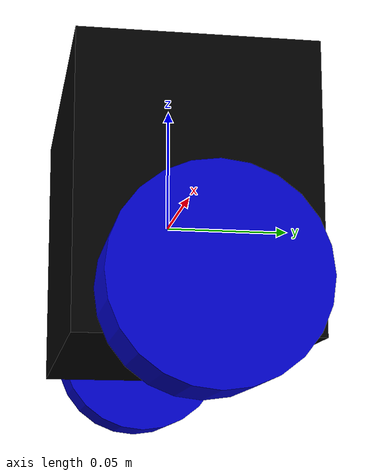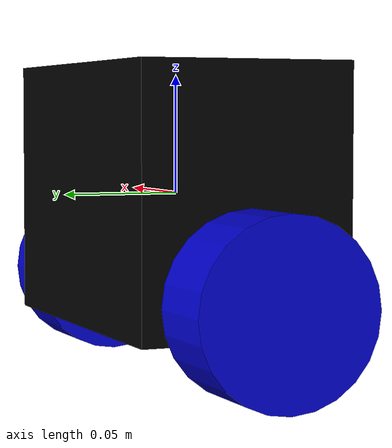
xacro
<?xml version="1.0"?>
<robot name="Alfred" xmlns:xacro="http://www.ros.org/wiki/xacro">

  <material name="blue">
    <color rgba="0 0 0.8 1"/>
  </material>

  <material name="black">
    <color rgba="0 0 0 1"/>
  </material>

<!-- Physical definitions -->
  <xacro:property name="bodyLength" value="0.15" />
  <xacro:property name="bodyHeight" value="0.11" />
  <xacro:property name="bodyDepth" value="0.09" />
  <xacro:property name="bodyMass" value="0.69" />
  <xacro:property name="wheelRadius" value="0.0375" />
  <xacro:property name="wheelWidth" value="0.035" />
  <xacro:property name="wheelMass" value="0.065" />
  <xacro:property name="rightWheelXPos" value="-0.09375" />
  <xacro:property name="leftWheelXPos" value="0.09375" />
  <xacro:property name="wheelZPos" value="-0.04" />

<!-- Macros definition -->
  <!-- Body -->
  <xacro:macro name="body_shape">
    <geometry>
      <box size="${bodyLength} ${bodyDepth} ${bodyHeight}" />
    </geometry>
  </xacro:macro>

  <!-- Wheel -->
  <xacro:macro name="wheel_shape">
    <geometry>
      <cylinder length="${wheelWidth}" radius="${wheelRadius}"/>
    </geometry>
    <origin rpy="0 ${pi/2} 0" xyz="0 0 0"/>
  </xacro:macro>

  <!-- Cylinder inertia matrix -->
  <xacro:macro name="cylinder_inertia" params="radius height mass">
    <mass value="${mass}"/>
    <inertia ixx="${1/12*mass*(3*radius*radius+height*height)}" ixy="0.0" ixz="0.0" iyy="${1/12*mass*(3*radius*radius+height*height)}" iyz="0.0" izz="${1/2*mass*radius*radius}"/>
  </xacro:macro>

  <!-- Box inertia matrix -->
  <xacro:macro name="box_inertia" params="width height depth mass">
    <mass value="${mass}"/>
    <inertia ixx="${1/12*mass*(height*height+depth*depth)}" ixy="0.0" ixz="0.0" iyy="${1/12*mass*(width*width+depth*depth)}" iyz="0.0" izz="${1/12*mass*(width*width+height*height)}"/>
  </xacro:macro>

  <!-- Wheel link-->
  <xacro:macro name="wheel_link" params="side">
    <link name="${side}_wheel">
      <visual>
        <xacro:wheel_shape />
        <material name="blue"/>
      </visual>
      <collision>
        <xacro:wheel_shape />
      </collision>
      <inertial>
        <xacro:cylinder_inertia radius="${wheelRadius}" height="${wheelWidth}" mass="${wheelMass}" />
      </inertial>
    </link>

    <gazebo reference="${side}_wheel">
      <mu1 value="200.0"/>
      <mu2 value="100.0"/>
      <kp value="10000000.0" />
      <kd value="1.0" />
      <material>Gazebo/Grey</material>
    </gazebo>
  </xacro:macro>

  <!-- Wheel transmission-->
  <xacro:macro name="wheel_transmission" params="side">
    <transmission name="${side}_wheel_rotation">
      <type>transmission_interface/SimpleTransmission</type>
      <actuator name="${side}_wheel_motor">
        <mechanicalReduction>1</mechanicalReduction>
      </actuator>
      <joint name="base_to_${side}_wheel">
        <hardwareInterface>hardware_interface/VelocityJointInterface</hardwareInterface>
      </joint>
    </transmission>
  </xacro:macro>

  <!-- Wheel joint-->
  <xacro:macro name="wheel_joint" params="side">
    <joint name="base_to_${side}_wheel" type="continuous">
      <parent link="base_link"/>
      <child link="${side}_wheel"/>
      <xacro:if value="${side == 'right'}" >
        <origin xyz="${rightWheelXPos} 0 ${wheelZPos}"/>
      </xacro:if>
      <xacro:if value="${side == 'left'}" >
        <origin xyz="${leftWheelXPos} 0 ${wheelZPos}"/>
      </xacro:if>
      <axis xyz="1 0 0"/>
    </joint>
  </xacro:macro>

<!-- Links definition -->
  <link name="dummy">
  </link>

  <link name="base_link">
    <visual>
      <xacro:body_shape />
      <material name="black"/>
    </visual>
    <collision>
      <xacro:body_shape />
    </collision>
    <inertial>
      <xacro:box_inertia width="${bodyLength}" height="${bodyHeight}" depth ="${bodyDepth}" mass="${bodyMass}" />
    </inertial>
  </link>

  <xacro:wheel_link side="right" />
  <xacro:wheel_link side="left" />

<!-- Joints definition -->
  <joint name="dummy_joint" type="fixed">
    <parent link="dummy"/>
    <child link="base_link"/>
  </joint>

  <xacro:wheel_joint side="right" />
  <xacro:wheel_joint side="left" />

<!-- Wheels transmission definition -->
  <xacro:wheel_transmission side="right" />
  <xacro:wheel_transmission side="left" />

<!-- Gazebo plugin for ROS Control -->
  <gazebo>
    <plugin name="gazebo_ros_control" filename="libgazebo_ros_control.so">
      <robotNamespace>/</robotNamespace>
    </plugin>
  </gazebo>

</robot>
